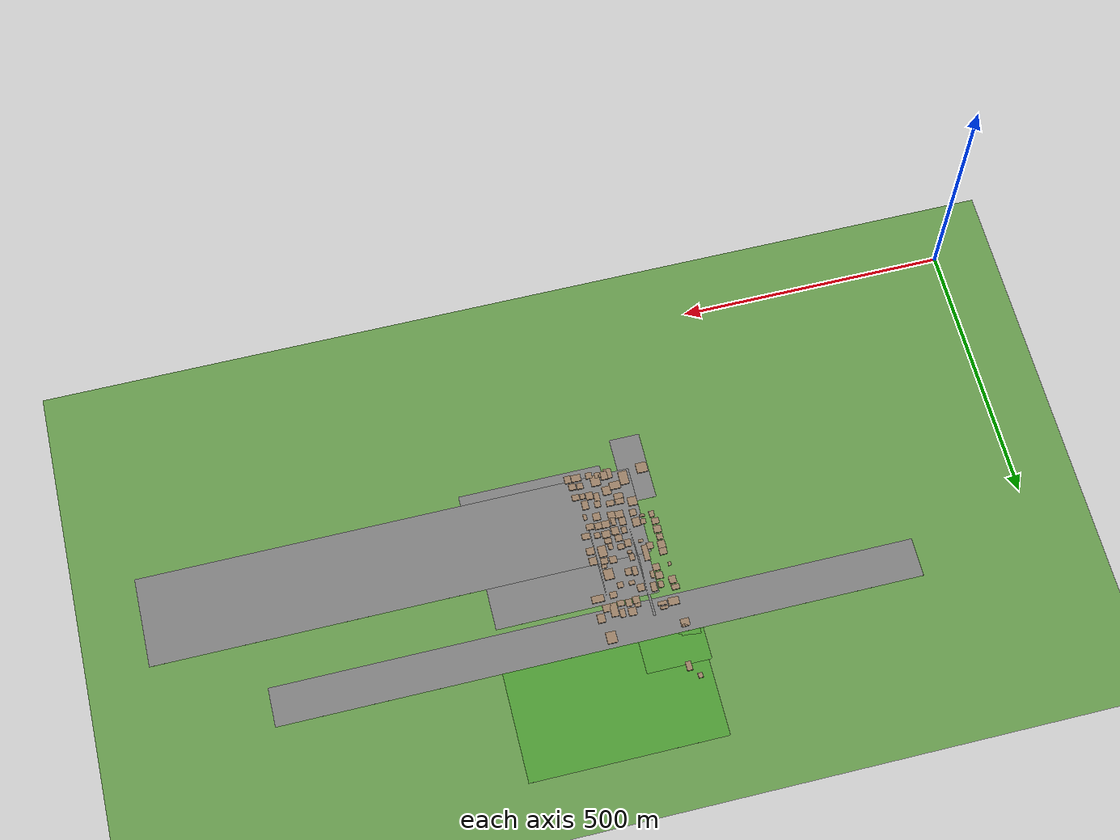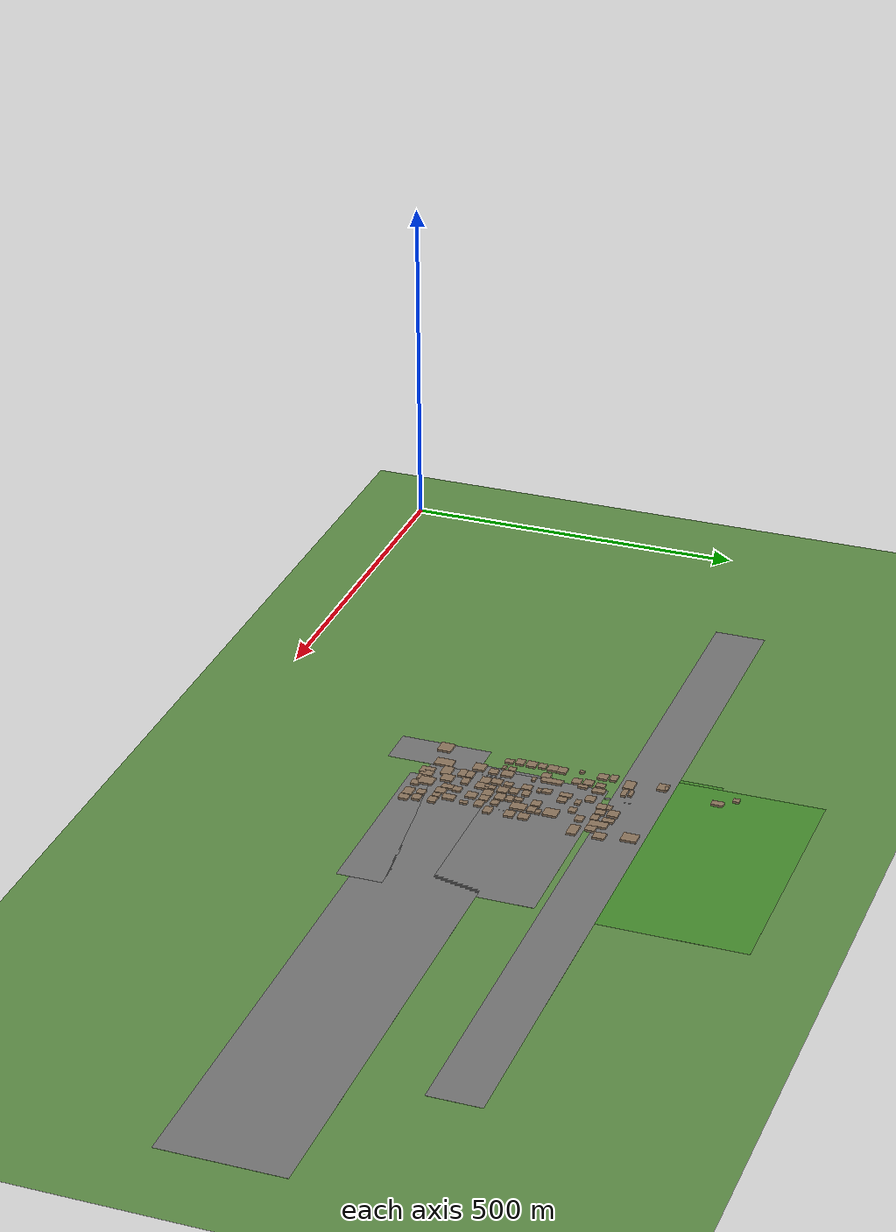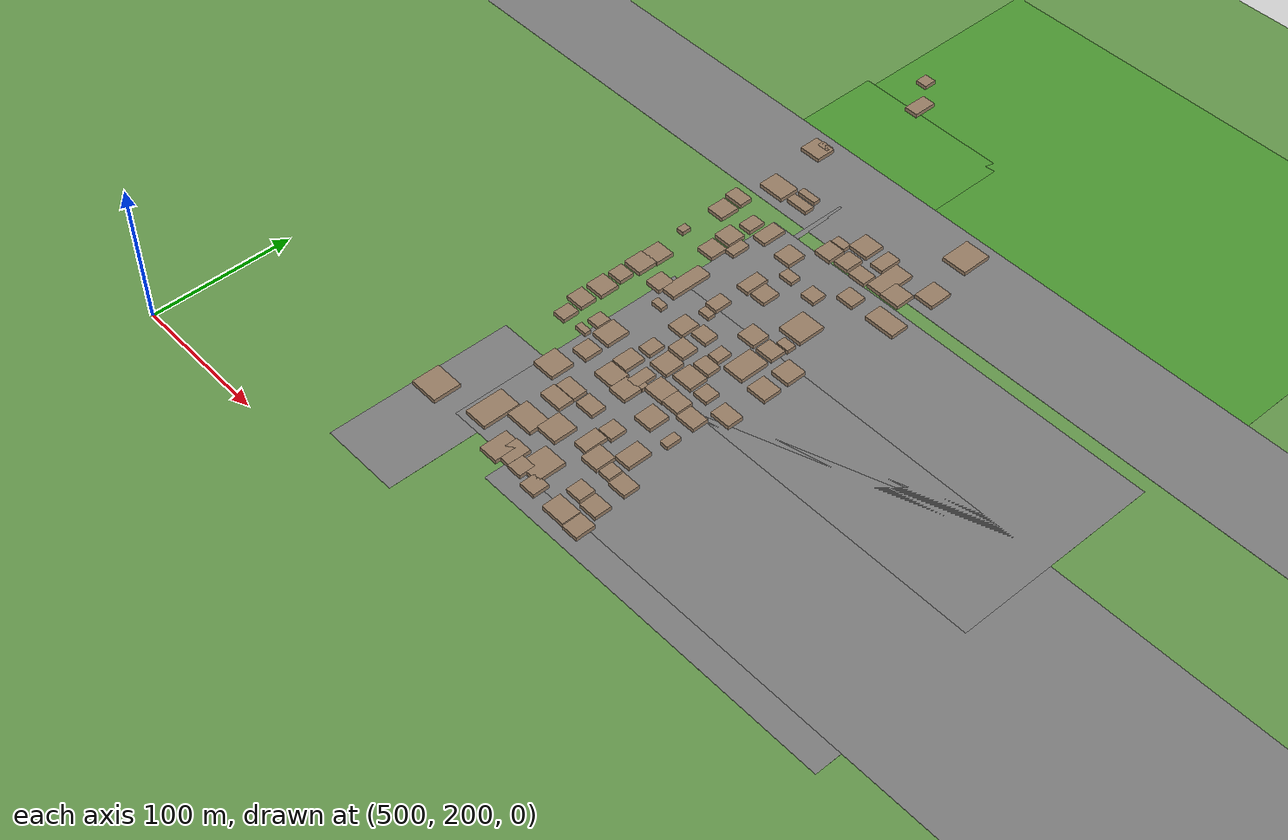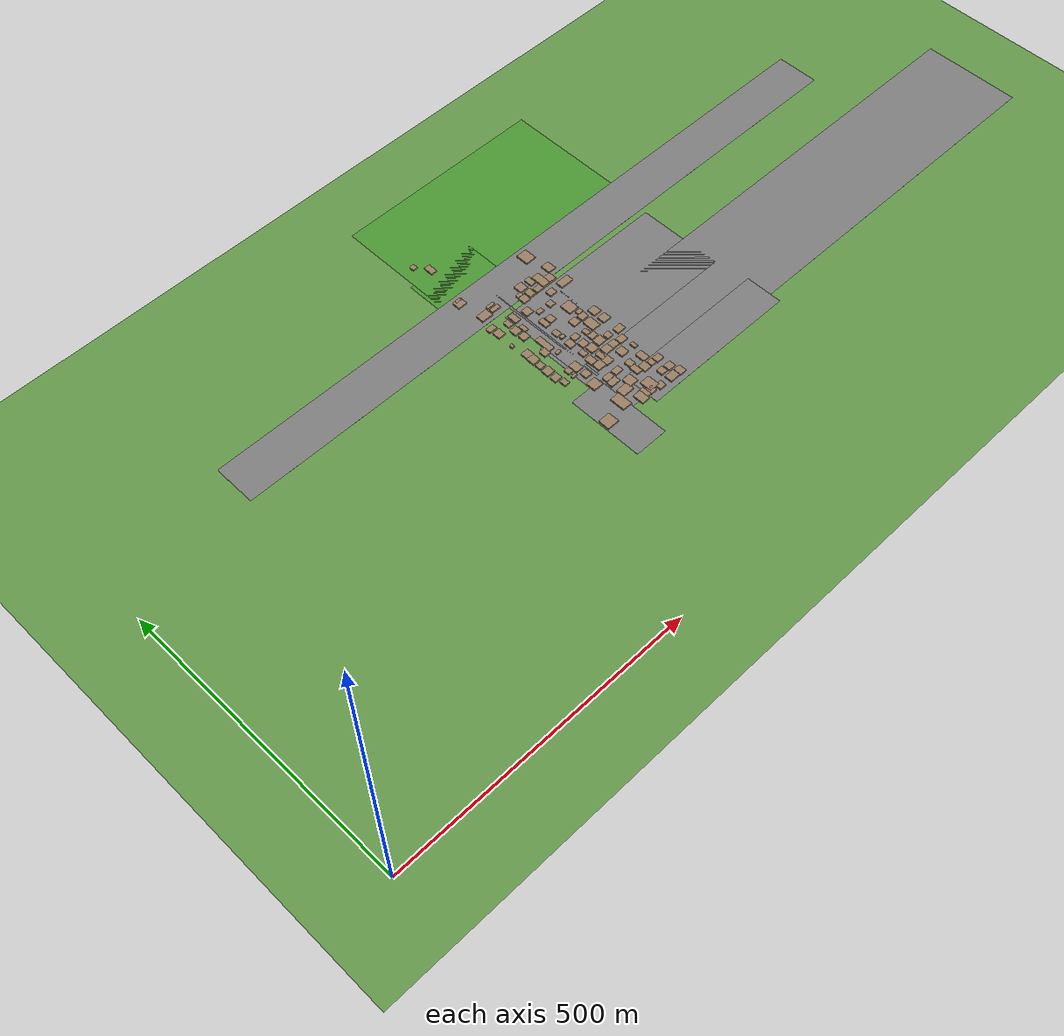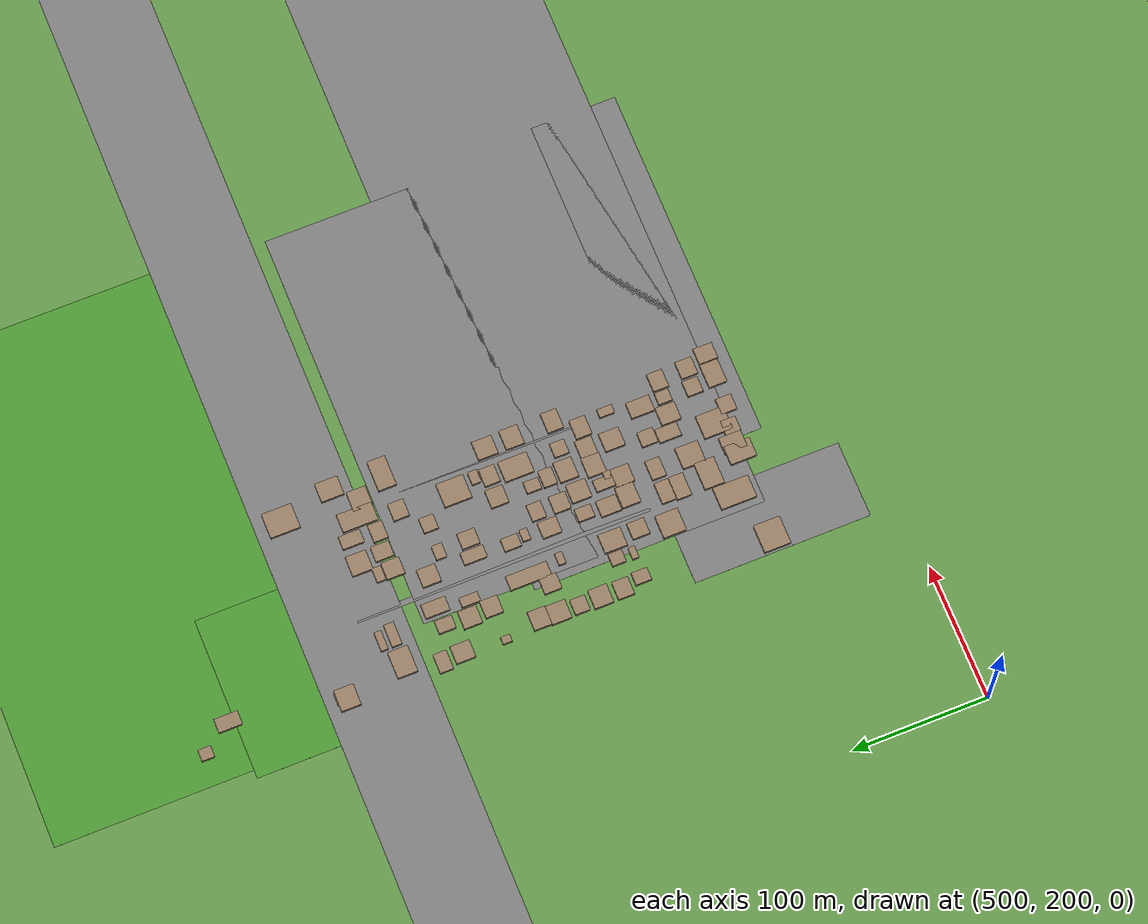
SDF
<sdf version="1.9">
 <world name="kimje_farmland">
  <model name="ground_plane">
   <static>true</static>
   <link name="link">
    <collision name="collision">
     <geometry><plane><normal>0 0 1</normal><size>2000 2000</size></plane></geometry>
    </collision>
    <visual name="visual">
     <geometry><plane><normal>0 0 1</normal><size>2000 2000</size></plane></geometry>
     <material><ambient>0.4 0.6 0.3 1</ambient><diffuse>0.4 0.6 0.3 1</diffuse></material>
    </visual>
   </link>
  </model>
  <model name="osm_15">
   <static>true</static>
   <pose>813.28 581.97 0.040 0 0 0</pose>
   <link name="link">
    <collision name="collision"><geometry><box><size>1186.26 73.63 0.080</size></box></geometry></collision>
    <visual name="visual">
     <geometry><box><size>1186.26 73.63 0.080</size></box></geometry>
     <material><ambient>0.5 0.5 0.5 1</ambient><diffuse>0.5 0.5 0.5 1</diffuse></material>
    </visual>
   </link>
  </model>
  <model name="osm_17">
   <static>true</static>
   <pose>1144.47 371.12 0.040 0 0 0</pose>
   <link name="link">
    <collision name="collision"><geometry><box><size>917.59 170.50 0.080</size></box></geometry></collision>
    <visual name="visual">
     <geometry><box><size>917.59 170.50 0.080</size></box></geometry>
     <material><ambient>0.5 0.5 0.5 1</ambient><diffuse>0.5 0.5 0.5 1</diffuse></material>
    </visual>
   </link>
  </model>
  <model name="osm_18">
   <static>true</static>
   <pose>841.81 462.14 0.040 0 0 0</pose>
   <link name="link">
    <collision name="collision"><geometry><box><size>300.90 147.02 0.080</size></box></geometry></collision>
    <visual name="visual">
     <geometry><box><size>300.90 147.02 0.080</size></box></geometry>
     <material><ambient>0.5 0.5 0.5 1</ambient><diffuse>0.5 0.5 0.5 1</diffuse></material>
    </visual>
   </link>
  </model>
  <model name="osm_19">
   <static>true</static>
   <pose>868.79 299.28 0.040 0 0 0</pose>
   <link name="link">
    <collision name="collision"><geometry><box><size>266.59 63.70 0.080</size></box></geometry></collision>
    <visual name="visual">
     <geometry><box><size>266.59 63.70 0.080</size></box></geometry>
     <material><ambient>0.5 0.5 0.5 1</ambient><diffuse>0.5 0.5 0.5 1</diffuse></material>
    </visual>
   </link>
  </model>
  <model name="osm_20">
   <static>true</static>
   <pose>677.61 287.76 0.040 0 0 0</pose>
   <link name="link">
    <collision name="collision"><geometry><box><size>56.59 130.14 0.080</size></box></geometry></collision>
    <visual name="visual">
     <geometry><box><size>56.59 130.14 0.080</size></box></geometry>
     <material><ambient>0.5 0.5 0.5 1</ambient><diffuse>0.5 0.5 0.5 1</diffuse></material>
    </visual>
   </link>
  </model>
  <model name="osm_25">
   <static>true</static>
   <pose>784.99 449.15 0.040 0 0 0</pose>
   <link name="link">
    <collision name="collision"><geometry><box><size>1.35 137.89 0.080</size></box></geometry></collision>
    <visual name="visual">
     <geometry><box><size>1.35 137.89 0.080</size></box></geometry>
     <material><ambient>0.5 0.5 0.5 1</ambient><diffuse>0.5 0.5 0.5 1</diffuse></material>
    </visual>
   </link>
  </model>
  <model name="osm_27">
   <static>true</static>
   <pose>710.72 469.01 0.040 0 0 0</pose>
   <link name="link">
    <collision name="collision"><geometry><box><size>4.04 215.42 0.080</size></box></geometry></collision>
    <visual name="visual">
     <geometry><box><size>4.04 215.42 0.080</size></box></geometry>
     <material><ambient>0.5 0.5 0.5 1</ambient><diffuse>0.5 0.5 0.5 1</diffuse></material>
    </visual>
   </link>
  </model>
  <model name="osm_1379">
   <static>true</static>
   <pose>660.75 705.38 1.500 0 0 0</pose>
   <link name="link">
    <collision name="collision"><geometry><box><size>8.44 9.18 3.000</size></box></geometry></collision>
    <visual name="visual">
     <geometry><box><size>8.44 9.18 3.000</size></box></geometry>
     <material><ambient>0.6 0.5 0.4 1</ambient><diffuse>0.6 0.5 0.4 1</diffuse></material>
    </visual>
   </link>
  </model>
  <model name="osm_1380">
   <static>true</static>
   <pose>675.96 683.78 1.500 0 0 0</pose>
   <link name="link">
    <collision name="collision"><geometry><box><size>10.18 17.19 3.000</size></box></geometry></collision>
    <visual name="visual">
     <geometry><box><size>10.18 17.19 3.000</size></box></geometry>
     <material><ambient>0.6 0.5 0.4 1</ambient><diffuse>0.6 0.5 0.4 1</diffuse></material>
    </visual>
   </link>
  </model>
  <model name="osm_1381">
   <static>true</static>
   <pose>795.84 599.43 1.500 0 0 0</pose>
   <link name="link">
    <collision name="collision"><geometry><box><size>18.50 21.80 3.000</size></box></geometry></collision>
    <visual name="visual">
     <geometry><box><size>18.50 21.80 3.000</size></box></geometry>
     <material><ambient>0.6 0.5 0.4 1</ambient><diffuse>0.6 0.5 0.4 1</diffuse></material>
    </visual>
   </link>
  </model>
  <model name="osm_1382">
   <static>true</static>
   <pose>804.86 560.35 1.500 0 0 0</pose>
   <link name="link">
    <collision name="collision"><geometry><box><size>14.12 16.63 3.000</size></box></geometry></collision>
    <visual name="visual">
     <geometry><box><size>14.12 16.63 3.000</size></box></geometry>
     <material><ambient>0.6 0.5 0.4 1</ambient><diffuse>0.6 0.5 0.4 1</diffuse></material>
    </visual>
   </link>
  </model>
  <model name="osm_1383">
   <static>true</static>
   <pose>790.59 543.69 1.500 0 0 0</pose>
   <link name="link">
    <collision name="collision"><geometry><box><size>14.74 14.07 3.000</size></box></geometry></collision>
    <visual name="visual">
     <geometry><box><size>14.74 14.07 3.000</size></box></geometry>
     <material><ambient>0.6 0.5 0.4 1</ambient><diffuse>0.6 0.5 0.4 1</diffuse></material>
    </visual>
   </link>
  </model>
  <model name="osm_1384">
   <static>true</static>
   <pose>778.69 549.90 1.500 0 0 0</pose>
   <link name="link">
    <collision name="collision"><geometry><box><size>13.51 25.74 3.000</size></box></geometry></collision>
    <visual name="visual">
     <geometry><box><size>13.51 25.74 3.000</size></box></geometry>
     <material><ambient>0.6 0.5 0.4 1</ambient><diffuse>0.6 0.5 0.4 1</diffuse></material>
    </visual>
   </link>
  </model>
  <model name="osm_1385">
   <static>true</static>
   <pose>765.34 559.48 1.500 0 0 0</pose>
   <link name="link">
    <collision name="collision"><geometry><box><size>9.75 15.68 3.000</size></box></geometry></collision>
    <visual name="visual">
     <geometry><box><size>9.75 15.68 3.000</size></box></geometry>
     <material><ambient>0.6 0.5 0.4 1</ambient><diffuse>0.6 0.5 0.4 1</diffuse></material>
    </visual>
   </link>
  </model>
  <model name="osm_1386">
   <static>true</static>
   <pose>763.95 540.58 1.500 0 0 0</pose>
   <link name="link">
    <collision name="collision"><geometry><box><size>13.25 10.45 3.000</size></box></geometry></collision>
    <visual name="visual">
     <geometry><box><size>13.25 10.45 3.000</size></box></geometry>
     <material><ambient>0.6 0.5 0.4 1</ambient><diffuse>0.6 0.5 0.4 1</diffuse></material>
    </visual>
   </link>
  </model>
  <model name="osm_1387">
   <static>true</static>
   <pose>747.52 560.74 1.500 0 0 0</pose>
   <link name="link">
    <collision name="collision"><geometry><box><size>14.83 14.94 3.000</size></box></geometry></collision>
    <visual name="visual">
     <geometry><box><size>14.83 14.94 3.000</size></box></geometry>
     <material><ambient>0.6 0.5 0.4 1</ambient><diffuse>0.6 0.5 0.4 1</diffuse></material>
    </visual>
   </link>
  </model>
  <model name="osm_1388">
   <static>true</static>
   <pose>749.54 543.03 1.500 0 0 0</pose>
   <link name="link">
    <collision name="collision"><geometry><box><size>11.27 13.43 3.000</size></box></geometry></collision>
    <visual name="visual">
     <geometry><box><size>11.27 13.43 3.000</size></box></geometry>
     <material><ambient>0.6 0.5 0.4 1</ambient><diffuse>0.6 0.5 0.4 1</diffuse></material>
    </visual>
   </link>
  </model>
  <model name="osm_1389">
   <static>true</static>
   <pose>735.22 551.09 1.500 0 0 0</pose>
   <link name="link">
    <collision name="collision"><geometry><box><size>10.69 6.50 3.000</size></box></geometry></collision>
    <visual name="visual">
     <geometry><box><size>10.69 6.50 3.000</size></box></geometry>
     <material><ambient>0.6 0.5 0.4 1</ambient><diffuse>0.6 0.5 0.4 1</diffuse></material>
    </visual>
   </link>
  </model>
  <model name="osm_1390">
   <static>true</static>
   <pose>735.56 540.67 1.500 0 0 0</pose>
   <link name="link">
    <collision name="collision"><geometry><box><size>12.71 13.19 3.000</size></box></geometry></collision>
    <visual name="visual">
     <geometry><box><size>12.71 13.19 3.000</size></box></geometry>
     <material><ambient>0.6 0.5 0.4 1</ambient><diffuse>0.6 0.5 0.4 1</diffuse></material>
    </visual>
   </link>
  </model>
  <model name="osm_1391">
   <static>true</static>
   <pose>721.42 519.85 1.500 0 0 0</pose>
   <link name="link">
    <collision name="collision"><geometry><box><size>13.35 13.48 3.000</size></box></geometry></collision>
    <visual name="visual">
     <geometry><box><size>13.35 13.48 3.000</size></box></geometry>
     <material><ambient>0.6 0.5 0.4 1</ambient><diffuse>0.6 0.5 0.4 1</diffuse></material>
    </visual>
   </link>
  </model>
  <model name="osm_1393">
   <static>true</static>
   <pose>663.35 608.19 1.500 0 0 0</pose>
   <link name="link">
    <collision name="collision"><geometry><box><size>8.79 4.99 3.000</size></box></geometry></collision>
    <visual name="visual">
     <geometry><box><size>8.79 4.99 3.000</size></box></geometry>
     <material><ambient>0.6 0.5 0.4 1</ambient><diffuse>0.6 0.5 0.4 1</diffuse></material>
    </visual>
   </link>
  </model>
  <model name="osm_1394">
   <static>true</static>
   <pose>671.10 558.92 1.500 0 0 0</pose>
   <link name="link">
    <collision name="collision"><geometry><box><size>19.78 14.61 3.000</size></box></geometry></collision>
    <visual name="visual">
     <geometry><box><size>19.78 14.61 3.000</size></box></geometry>
     <material><ambient>0.6 0.5 0.4 1</ambient><diffuse>0.6 0.5 0.4 1</diffuse></material>
    </visual>
   </link>
  </model>
  <model name="osm_1395">
   <static>true</static>
   <pose>690.43 567.06 1.500 0 0 0</pose>
   <link name="link">
    <collision name="collision"><geometry><box><size>14.19 5.18 3.000</size></box></geometry></collision>
    <visual name="visual">
     <geometry><box><size>14.19 5.18 3.000</size></box></geometry>
     <material><ambient>0.6 0.5 0.4 1</ambient><diffuse>0.6 0.5 0.4 1</diffuse></material>
    </visual>
   </link>
  </model>
  <model name="osm_1396">
   <static>true</static>
   <pose>691.63 558.06 1.500 0 0 0</pose>
   <link name="link">
    <collision name="collision"><geometry><box><size>16.75 7.22 3.000</size></box></geometry></collision>
    <visual name="visual">
     <geometry><box><size>16.75 7.22 3.000</size></box></geometry>
     <material><ambient>0.6 0.5 0.4 1</ambient><diffuse>0.6 0.5 0.4 1</diffuse></material>
    </visual>
   </link>
  </model>
  <model name="osm_1397">
   <static>true</static>
   <pose>698.67 524.10 1.500 0 0 0</pose>
   <link name="link">
    <collision name="collision"><geometry><box><size>10.38 17.64 3.000</size></box></geometry></collision>
    <visual name="visual">
     <geometry><box><size>10.38 17.64 3.000</size></box></geometry>
     <material><ambient>0.6 0.5 0.4 1</ambient><diffuse>0.6 0.5 0.4 1</diffuse></material>
    </visual>
   </link>
  </model>
  <model name="osm_1398">
   <static>true</static>
   <pose>684.90 522.32 1.500 0 0 0</pose>
   <link name="link">
    <collision name="collision"><geometry><box><size>9.58 12.46 3.000</size></box></geometry></collision>
    <visual name="visual">
     <geometry><box><size>9.58 12.46 3.000</size></box></geometry>
     <material><ambient>0.6 0.5 0.4 1</ambient><diffuse>0.6 0.5 0.4 1</diffuse></material>
    </visual>
   </link>
  </model>
  <model name="osm_1399">
   <static>true</static>
   <pose>660.90 533.39 1.500 0 0 0</pose>
   <link name="link">
    <collision name="collision"><geometry><box><size>14.20 9.74 3.000</size></box></geometry></collision>
    <visual name="visual">
     <geometry><box><size>14.20 9.74 3.000</size></box></geometry>
     <material><ambient>0.6 0.5 0.4 1</ambient><diffuse>0.6 0.5 0.4 1</diffuse></material>
    </visual>
   </link>
  </model>
  <model name="osm_1400">
   <static>true</static>
   <pose>662.46 518.39 1.500 0 0 0</pose>
   <link name="link">
    <collision name="collision"><geometry><box><size>13.11 14.10 3.000</size></box></geometry></collision>
    <visual name="visual">
     <geometry><box><size>13.11 14.10 3.000</size></box></geometry>
     <material><ambient>0.6 0.5 0.4 1</ambient><diffuse>0.6 0.5 0.4 1</diffuse></material>
    </visual>
   </link>
  </model>
  <model name="osm_1417">
   <static>true</static>
   <pose>659.58 487.67 1.500 0 0 0</pose>
   <link name="link">
    <collision name="collision"><geometry><box><size>5.36 6.70 3.000</size></box></geometry></collision>
    <visual name="visual">
     <geometry><box><size>5.36 6.70 3.000</size></box></geometry>
     <material><ambient>0.6 0.5 0.4 1</ambient><diffuse>0.6 0.5 0.4 1</diffuse></material>
    </visual>
   </link>
  </model>
  <model name="osm_1422">
   <static>true</static>
   <pose>664.97 460.95 1.500 0 0 0</pose>
   <link name="link">
    <collision name="collision"><geometry><box><size>13.96 13.31 3.000</size></box></geometry></collision>
    <visual name="visual">
     <geometry><box><size>13.96 13.31 3.000</size></box></geometry>
     <material><ambient>0.6 0.5 0.4 1</ambient><diffuse>0.6 0.5 0.4 1</diffuse></material>
    </visual>
   </link>
  </model>
  <model name="osm_1426">
   <static>true</static>
   <pose>664.30 447.53 1.500 0 0 0</pose>
   <link name="link">
    <collision name="collision"><geometry><box><size>13.94 14.49 3.000</size></box></geometry></collision>
    <visual name="visual">
     <geometry><box><size>13.94 14.49 3.000</size></box></geometry>
     <material><ambient>0.6 0.5 0.4 1</ambient><diffuse>0.6 0.5 0.4 1</diffuse></material>
    </visual>
   </link>
  </model>
  <model name="osm_1427">
   <static>true</static>
   <pose>685.22 445.04 1.500 0 0 0</pose>
   <link name="link">
    <collision name="collision"><geometry><box><size>11.81 12.65 3.000</size></box></geometry></collision>
    <visual name="visual">
     <geometry><box><size>11.81 12.65 3.000</size></box></geometry>
     <material><ambient>0.6 0.5 0.4 1</ambient><diffuse>0.6 0.5 0.4 1</diffuse></material>
    </visual>
   </link>
  </model>
  <model name="osm_1428">
   <static>true</static>
   <pose>683.43 504.77 1.500 0 0 0</pose>
   <link name="link">
    <collision name="collision"><geometry><box><size>13.31 13.44 3.000</size></box></geometry></collision>
    <visual name="visual">
     <geometry><box><size>13.31 13.44 3.000</size></box></geometry>
     <material><ambient>0.6 0.5 0.4 1</ambient><diffuse>0.6 0.5 0.4 1</diffuse></material>
    </visual>
   </link>
  </model>
  <model name="osm_1429">
   <static>true</static>
   <pose>695.15 500.35 1.500 0 0 0</pose>
   <link name="link">
    <collision name="collision"><geometry><box><size>7.10 13.47 3.000</size></box></geometry></collision>
    <visual name="visual">
     <geometry><box><size>7.10 13.47 3.000</size></box></geometry>
     <material><ambient>0.6 0.5 0.4 1</ambient><diffuse>0.6 0.5 0.4 1</diffuse></material>
    </visual>
   </link>
  </model>
  <model name="osm_1430">
   <static>true</static>
   <pose>684.94 488.49 1.500 0 0 0</pose>
   <link name="link">
    <collision name="collision"><geometry><box><size>12.87 12.85 3.000</size></box></geometry></collision>
    <visual name="visual">
     <geometry><box><size>12.87 12.85 3.000</size></box></geometry>
     <material><ambient>0.6 0.5 0.4 1</ambient><diffuse>0.6 0.5 0.4 1</diffuse></material>
    </visual>
   </link>
  </model>
  <model name="osm_1431">
   <static>true</static>
   <pose>695.87 456.81 1.500 0 0 0</pose>
   <link name="link">
    <collision name="collision"><geometry><box><size>10.67 30.10 3.000</size></box></geometry></collision>
    <visual name="visual">
     <geometry><box><size>10.67 30.10 3.000</size></box></geometry>
     <material><ambient>0.6 0.5 0.4 1</ambient><diffuse>0.6 0.5 0.4 1</diffuse></material>
    </visual>
   </link>
  </model>
  <model name="osm_1432">
   <static>true</static>
   <pose>699.32 431.95 1.500 0 0 0</pose>
   <link name="link">
    <collision name="collision"><geometry><box><size>8.76 5.28 3.000</size></box></geometry></collision>
    <visual name="visual">
     <geometry><box><size>8.76 5.28 3.000</size></box></geometry>
     <material><ambient>0.6 0.5 0.4 1</ambient><diffuse>0.6 0.5 0.4 1</diffuse></material>
    </visual>
   </link>
  </model>
  <model name="osm_1433">
   <static>true</static>
   <pose>663.53 432.11 1.500 0 0 0</pose>
   <link name="link">
    <collision name="collision"><geometry><box><size>11.38 10.89 3.000</size></box></geometry></collision>
    <visual name="visual">
     <geometry><box><size>11.38 10.89 3.000</size></box></geometry>
     <material><ambient>0.6 0.5 0.4 1</ambient><diffuse>0.6 0.5 0.4 1</diffuse></material>
    </visual>
   </link>
  </model>
  <model name="osm_1436">
   <static>true</static>
   <pose>734.91 507.03 1.500 0 0 0</pose>
   <link name="link">
    <collision name="collision"><geometry><box><size>10.73 7.67 3.000</size></box></geometry></collision>
    <visual name="visual">
     <geometry><box><size>10.73 7.67 3.000</size></box></geometry>
     <material><ambient>0.6 0.5 0.4 1</ambient><diffuse>0.6 0.5 0.4 1</diffuse></material>
    </visual>
   </link>
  </model>
  <model name="osm_1437">
   <static>true</static>
   <pose>723.81 486.03 1.500 0 0 0</pose>
   <link name="link">
    <collision name="collision"><geometry><box><size>9.35 16.81 3.000</size></box></geometry></collision>
    <visual name="visual">
     <geometry><box><size>9.35 16.81 3.000</size></box></geometry>
     <material><ambient>0.6 0.5 0.4 1</ambient><diffuse>0.6 0.5 0.4 1</diffuse></material>
    </visual>
   </link>
  </model>
  <model name="osm_1438">
   <static>true</static>
   <pose>735.99 485.01 1.500 0 0 0</pose>
   <link name="link">
    <collision name="collision"><geometry><box><size>11.66 12.87 3.000</size></box></geometry></collision>
    <visual name="visual">
     <geometry><box><size>11.66 12.87 3.000</size></box></geometry>
     <material><ambient>0.6 0.5 0.4 1</ambient><diffuse>0.6 0.5 0.4 1</diffuse></material>
    </visual>
   </link>
  </model>
  <model name="osm_1439">
   <static>true</static>
   <pose>722.45 459.01 1.500 0 0 0</pose>
   <link name="link">
    <collision name="collision"><geometry><box><size>9.44 12.35 3.000</size></box></geometry></collision>
    <visual name="visual">
     <geometry><box><size>9.44 12.35 3.000</size></box></geometry>
     <material><ambient>0.6 0.5 0.4 1</ambient><diffuse>0.6 0.5 0.4 1</diffuse></material>
    </visual>
   </link>
  </model>
  <model name="osm_1440">
   <static>true</static>
   <pose>724.17 448.09 1.500 0 0 0</pose>
   <link name="link">
    <collision name="collision"><geometry><box><size>8.64 5.64 3.000</size></box></geometry></collision>
    <visual name="visual">
     <geometry><box><size>8.64 5.64 3.000</size></box></geometry>
     <material><ambient>0.6 0.5 0.4 1</ambient><diffuse>0.6 0.5 0.4 1</diffuse></material>
    </visual>
   </link>
  </model>
  <model name="osm_1441">
   <static>true</static>
   <pose>722.72 430.48 1.500 0 0 0</pose>
   <link name="link">
    <collision name="collision"><geometry><box><size>12.09 13.83 3.000</size></box></geometry></collision>
    <visual name="visual">
     <geometry><box><size>12.09 13.83 3.000</size></box></geometry>
     <material><ambient>0.6 0.5 0.4 1</ambient><diffuse>0.6 0.5 0.4 1</diffuse></material>
    </visual>
   </link>
  </model>
  <model name="osm_1442">
   <static>true</static>
   <pose>736.92 434.42 1.500 0 0 0</pose>
   <link name="link">
    <collision name="collision"><geometry><box><size>12.45 10.32 3.000</size></box></geometry></collision>
    <visual name="visual">
     <geometry><box><size>12.45 10.32 3.000</size></box></geometry>
     <material><ambient>0.6 0.5 0.4 1</ambient><diffuse>0.6 0.5 0.4 1</diffuse></material>
    </visual>
   </link>
  </model>
  <model name="osm_1443">
   <static>true</static>
   <pose>756.19 506.29 1.500 0 0 0</pose>
   <link name="link">
    <collision name="collision"><geometry><box><size>11.01 10.53 3.000</size></box></geometry></collision>
    <visual name="visual">
     <geometry><box><size>11.01 10.53 3.000</size></box></geometry>
     <material><ambient>0.6 0.5 0.4 1</ambient><diffuse>0.6 0.5 0.4 1</diffuse></material>
    </visual>
   </link>
  </model>
  <model name="osm_1444">
   <static>true</static>
   <pose>773.10 521.81 1.500 0 0 0</pose>
   <link name="link">
    <collision name="collision"><geometry><box><size>12.92 11.45 3.000</size></box></geometry></collision>
    <visual name="visual">
     <geometry><box><size>12.92 11.45 3.000</size></box></geometry>
     <material><ambient>0.6 0.5 0.4 1</ambient><diffuse>0.6 0.5 0.4 1</diffuse></material>
    </visual>
   </link>
  </model>
  <model name="osm_1445">
   <static>true</static>
   <pose>801.98 522.84 1.500 0 0 0</pose>
   <link name="link">
    <collision name="collision"><geometry><box><size>22.65 13.18 3.000</size></box></geometry></collision>
    <visual name="visual">
     <geometry><box><size>22.65 13.18 3.000</size></box></geometry>
     <material><ambient>0.6 0.5 0.4 1</ambient><diffuse>0.6 0.5 0.4 1</diffuse></material>
    </visual>
   </link>
  </model>
  <model name="osm_1446">
   <static>true</static>
   <pose>771.64 481.45 1.500 0 0 0</pose>
   <link name="link">
    <collision name="collision"><geometry><box><size>17.80 20.02 3.000</size></box></geometry></collision>
    <visual name="visual">
     <geometry><box><size>17.80 20.02 3.000</size></box></geometry>
     <material><ambient>0.6 0.5 0.4 1</ambient><diffuse>0.6 0.5 0.4 1</diffuse></material>
    </visual>
   </link>
  </model>
  <model name="osm_1447">
   <static>true</static>
   <pose>792.76 450.16 1.500 0 0 0</pose>
   <link name="link">
    <collision name="collision"><geometry><box><size>13.99 14.58 3.000</size></box></geometry></collision>
    <visual name="visual">
     <geometry><box><size>13.99 14.58 3.000</size></box></geometry>
     <material><ambient>0.6 0.5 0.4 1</ambient><diffuse>0.6 0.5 0.4 1</diffuse></material>
    </visual>
   </link>
  </model>
  <model name="osm_1448">
   <static>true</static>
   <pose>792.99 430.17 1.500 0 0 0</pose>
   <link name="link">
    <collision name="collision"><geometry><box><size>14.76 13.56 3.000</size></box></geometry></collision>
    <visual name="visual">
     <geometry><box><size>14.76 13.56 3.000</size></box></geometry>
     <material><ambient>0.6 0.5 0.4 1</ambient><diffuse>0.6 0.5 0.4 1</diffuse></material>
    </visual>
   </link>
  </model>
  <model name="osm_1449">
   <static>true</static>
   <pose>775.60 464.76 1.500 0 0 0</pose>
   <link name="link">
    <collision name="collision"><geometry><box><size>9.64 6.77 3.000</size></box></geometry></collision>
    <visual name="visual">
     <geometry><box><size>9.64 6.77 3.000</size></box></geometry>
     <material><ambient>0.6 0.5 0.4 1</ambient><diffuse>0.6 0.5 0.4 1</diffuse></material>
    </visual>
   </link>
  </model>
  <model name="osm_1450">
   <static>true</static>
   <pose>772.88 454.69 1.500 0 0 0</pose>
   <link name="link">
    <collision name="collision"><geometry><box><size>13.12 11.33 3.000</size></box></geometry></collision>
    <visual name="visual">
     <geometry><box><size>13.12 11.33 3.000</size></box></geometry>
     <material><ambient>0.6 0.5 0.4 1</ambient><diffuse>0.6 0.5 0.4 1</diffuse></material>
    </visual>
   </link>
  </model>
  <model name="osm_1451">
   <static>true</static>
   <pose>756.91 455.64 1.500 0 0 0</pose>
   <link name="link">
    <collision name="collision"><geometry><box><size>13.56 12.85 3.000</size></box></geometry></collision>
    <visual name="visual">
     <geometry><box><size>13.56 12.85 3.000</size></box></geometry>
     <material><ambient>0.6 0.5 0.4 1</ambient><diffuse>0.6 0.5 0.4 1</diffuse></material>
    </visual>
   </link>
  </model>
  <model name="osm_1452">
   <static>true</static>
   <pose>771.85 435.53 1.500 0 0 0</pose>
   <link name="link">
    <collision name="collision"><geometry><box><size>15.39 21.30 3.000</size></box></geometry></collision>
    <visual name="visual">
     <geometry><box><size>15.39 21.30 3.000</size></box></geometry>
     <material><ambient>0.6 0.5 0.4 1</ambient><diffuse>0.6 0.5 0.4 1</diffuse></material>
    </visual>
   </link>
  </model>
  <model name="osm_1453">
   <static>true</static>
   <pose>755.11 429.98 1.500 0 0 0</pose>
   <link name="link">
    <collision name="collision"><geometry><box><size>8.56 10.81 3.000</size></box></geometry></collision>
    <visual name="visual">
     <geometry><box><size>8.56 10.81 3.000</size></box></geometry>
     <material><ambient>0.6 0.5 0.4 1</ambient><diffuse>0.6 0.5 0.4 1</diffuse></material>
    </visual>
   </link>
  </model>
  <model name="osm_1454">
   <static>true</static>
   <pose>756.81 418.02 1.500 0 0 0</pose>
   <link name="link">
    <collision name="collision"><geometry><box><size>12.88 9.87 3.000</size></box></geometry></collision>
    <visual name="visual">
     <geometry><box><size>12.88 9.87 3.000</size></box></geometry>
     <material><ambient>0.6 0.5 0.4 1</ambient><diffuse>0.6 0.5 0.4 1</diffuse></material>
    </visual>
   </link>
  </model>
  <model name="osm_1455">
   <static>true</static>
   <pose>757.09 404.43 1.500 0 0 0</pose>
   <link name="link">
    <collision name="collision"><geometry><box><size>15.25 13.45 3.000</size></box></geometry></collision>
    <visual name="visual">
     <geometry><box><size>15.25 13.45 3.000</size></box></geometry>
     <material><ambient>0.6 0.5 0.4 1</ambient><diffuse>0.6 0.5 0.4 1</diffuse></material>
    </visual>
   </link>
  </model>
  <model name="osm_1456">
   <static>true</static>
   <pose>773.19 402.71 1.500 0 0 0</pose>
   <link name="link">
    <collision name="collision"><geometry><box><size>10.71 10.60 3.000</size></box></geometry></collision>
    <visual name="visual">
     <geometry><box><size>10.71 10.60 3.000</size></box></geometry>
     <material><ambient>0.6 0.5 0.4 1</ambient><diffuse>0.6 0.5 0.4 1</diffuse></material>
    </visual>
   </link>
  </model>
  <model name="osm_1457">
   <static>true</static>
   <pose>793.71 399.88 1.500 0 0 0</pose>
   <link name="link">
    <collision name="collision"><geometry><box><size>15.01 11.63 3.000</size></box></geometry></collision>
    <visual name="visual">
     <geometry><box><size>15.01 11.63 3.000</size></box></geometry>
     <material><ambient>0.6 0.5 0.4 1</ambient><diffuse>0.6 0.5 0.4 1</diffuse></material>
    </visual>
   </link>
  </model>
  <model name="osm_1458">
   <static>true</static>
   <pose>782.01 383.40 1.500 0 0 0</pose>
   <link name="link">
    <collision name="collision"><geometry><box><size>14.34 11.57 3.000</size></box></geometry></collision>
    <visual name="visual">
     <geometry><box><size>14.34 11.57 3.000</size></box></geometry>
     <material><ambient>0.6 0.5 0.4 1</ambient><diffuse>0.6 0.5 0.4 1</diffuse></material>
    </visual>
   </link>
  </model>
  <model name="osm_1459">
   <static>true</static>
   <pose>767.05 385.35 1.500 0 0 0</pose>
   <link name="link">
    <collision name="collision"><geometry><box><size>13.15 12.28 3.000</size></box></geometry></collision>
    <visual name="visual">
     <geometry><box><size>13.15 12.28 3.000</size></box></geometry>
     <material><ambient>0.6 0.5 0.4 1</ambient><diffuse>0.6 0.5 0.4 1</diffuse></material>
    </visual>
   </link>
  </model>
  <model name="osm_1460">
   <static>true</static>
   <pose>765.69 366.68 1.500 0 0 0</pose>
   <link name="link">
    <collision name="collision"><geometry><box><size>13.84 14.57 3.000</size></box></geometry></collision>
    <visual name="visual">
     <geometry><box><size>13.84 14.57 3.000</size></box></geometry>
     <material><ambient>0.6 0.5 0.4 1</ambient><diffuse>0.6 0.5 0.4 1</diffuse></material>
    </visual>
   </link>
  </model>
  <model name="osm_1461">
   <static>true</static>
   <pose>786.41 362.85 1.500 0 0 0</pose>
   <link name="link">
    <collision name="collision"><geometry><box><size>6.27 10.92 3.000</size></box></geometry></collision>
    <visual name="visual">
     <geometry><box><size>6.27 10.92 3.000</size></box></geometry>
     <material><ambient>0.6 0.5 0.4 1</ambient><diffuse>0.6 0.5 0.4 1</diffuse></material>
    </visual>
   </link>
  </model>
  <model name="osm_1462">
   <static>true</static>
   <pose>753.14 385.41 1.500 0 0 0</pose>
   <link name="link">
    <collision name="collision"><geometry><box><size>15.00 13.33 3.000</size></box></geometry></collision>
    <visual name="visual">
     <geometry><box><size>15.00 13.33 3.000</size></box></geometry>
     <material><ambient>0.6 0.5 0.4 1</ambient><diffuse>0.6 0.5 0.4 1</diffuse></material>
    </visual>
   </link>
  </model>
  <model name="osm_1463">
   <static>true</static>
   <pose>736.70 417.21 1.500 0 0 0</pose>
   <link name="link">
    <collision name="collision"><geometry><box><size>12.88 12.30 3.000</size></box></geometry></collision>
    <visual name="visual">
     <geometry><box><size>12.88 12.30 3.000</size></box></geometry>
     <material><ambient>0.6 0.5 0.4 1</ambient><diffuse>0.6 0.5 0.4 1</diffuse></material>
    </visual>
   </link>
  </model>
  <model name="osm_1464">
   <static>true</static>
   <pose>739.63 401.99 1.500 0 0 0</pose>
   <link name="link">
    <collision name="collision"><geometry><box><size>13.99 14.35 3.000</size></box></geometry></collision>
    <visual name="visual">
     <geometry><box><size>13.99 14.35 3.000</size></box></geometry>
     <material><ambient>0.6 0.5 0.4 1</ambient><diffuse>0.6 0.5 0.4 1</diffuse></material>
    </visual>
   </link>
  </model>
  <model name="osm_1465">
   <static>true</static>
   <pose>738.37 383.13 1.500 0 0 0</pose>
   <link name="link">
    <collision name="collision"><geometry><box><size>8.66 15.08 3.000</size></box></geometry></collision>
    <visual name="visual">
     <geometry><box><size>8.66 15.08 3.000</size></box></geometry>
     <material><ambient>0.6 0.5 0.4 1</ambient><diffuse>0.6 0.5 0.4 1</diffuse></material>
    </visual>
   </link>
  </model>
  <model name="osm_1466">
   <static>true</static>
   <pose>723.36 404.29 1.500 0 0 0</pose>
   <link name="link">
    <collision name="collision"><geometry><box><size>9.51 11.80 3.000</size></box></geometry></collision>
    <visual name="visual">
     <geometry><box><size>9.51 11.80 3.000</size></box></geometry>
     <material><ambient>0.6 0.5 0.4 1</ambient><diffuse>0.6 0.5 0.4 1</diffuse></material>
    </visual>
   </link>
  </model>
  <model name="osm_1467">
   <static>true</static>
   <pose>722.04 387.07 1.500 0 0 0</pose>
   <link name="link">
    <collision name="collision"><geometry><box><size>12.04 14.82 3.000</size></box></geometry></collision>
    <visual name="visual">
     <geometry><box><size>12.04 14.82 3.000</size></box></geometry>
     <material><ambient>0.6 0.5 0.4 1</ambient><diffuse>0.6 0.5 0.4 1</diffuse></material>
    </visual>
   </link>
  </model>
  <model name="osm_1468">
   <static>true</static>
   <pose>724.29 371.86 1.500 0 0 0</pose>
   <link name="link">
    <collision name="collision"><geometry><box><size>15.33 13.47 3.000</size></box></geometry></collision>
    <visual name="visual">
     <geometry><box><size>15.33 13.47 3.000</size></box></geometry>
     <material><ambient>0.6 0.5 0.4 1</ambient><diffuse>0.6 0.5 0.4 1</diffuse></material>
    </visual>
   </link>
  </model>
  <model name="osm_1469">
   <static>true</static>
   <pose>738.80 370.01 1.500 0 0 0</pose>
   <link name="link">
    <collision name="collision"><geometry><box><size>13.52 13.38 3.000</size></box></geometry></collision>
    <visual name="visual">
     <geometry><box><size>13.52 13.38 3.000</size></box></geometry>
     <material><ambient>0.6 0.5 0.4 1</ambient><diffuse>0.6 0.5 0.4 1</diffuse></material>
    </visual>
   </link>
  </model>
  <model name="osm_1470">
   <static>true</static>
   <pose>743.10 379.29 1.500 0 0 0</pose>
   <link name="link">
    <collision name="collision"><geometry><box><size>5.56 5.38 3.000</size></box></geometry></collision>
    <visual name="visual">
     <geometry><box><size>5.56 5.38 3.000</size></box></geometry>
     <material><ambient>0.6 0.5 0.4 1</ambient><diffuse>0.6 0.5 0.4 1</diffuse></material>
    </visual>
   </link>
  </model>
  <model name="osm_1471">
   <static>true</static>
   <pose>698.06 393.94 1.500 0 0 0</pose>
   <link name="link">
    <collision name="collision"><geometry><box><size>14.04 16.53 3.000</size></box></geometry></collision>
    <visual name="visual">
     <geometry><box><size>14.04 16.53 3.000</size></box></geometry>
     <material><ambient>0.6 0.5 0.4 1</ambient><diffuse>0.6 0.5 0.4 1</diffuse></material>
    </visual>
   </link>
  </model>
  <model name="osm_1472">
   <static>true</static>
   <pose>699.23 374.43 1.500 0 0 0</pose>
   <link name="link">
    <collision name="collision"><geometry><box><size>12.09 12.60 3.000</size></box></geometry></collision>
    <visual name="visual">
     <geometry><box><size>12.09 12.60 3.000</size></box></geometry>
     <material><ambient>0.6 0.5 0.4 1</ambient><diffuse>0.6 0.5 0.4 1</diffuse></material>
    </visual>
   </link>
  </model>
  <model name="osm_1473">
   <static>true</static>
   <pose>685.24 395.88 1.500 0 0 0</pose>
   <link name="link">
    <collision name="collision"><geometry><box><size>9.27 10.10 3.000</size></box></geometry></collision>
    <visual name="visual">
     <geometry><box><size>9.27 10.10 3.000</size></box></geometry>
     <material><ambient>0.6 0.5 0.4 1</ambient><diffuse>0.6 0.5 0.4 1</diffuse></material>
    </visual>
   </link>
  </model>
  <model name="osm_1474">
   <static>true</static>
   <pose>684.43 384.05 1.500 0 0 0</pose>
   <link name="link">
    <collision name="collision"><geometry><box><size>8.83 4.70 3.000</size></box></geometry></collision>
    <visual name="visual">
     <geometry><box><size>8.83 4.70 3.000</size></box></geometry>
     <material><ambient>0.6 0.5 0.4 1</ambient><diffuse>0.6 0.5 0.4 1</diffuse></material>
    </visual>
   </link>
  </model>
  <model name="osm_1475">
   <static>true</static>
   <pose>663.93 416.70 1.500 0 0 0</pose>
   <link name="link">
    <collision name="collision"><geometry><box><size>14.08 13.83 3.000</size></box></geometry></collision>
    <visual name="visual">
     <geometry><box><size>14.08 13.83 3.000</size></box></geometry>
     <material><ambient>0.6 0.5 0.4 1</ambient><diffuse>0.6 0.5 0.4 1</diffuse></material>
    </visual>
   </link>
  </model>
  <model name="osm_1476">
   <static>true</static>
   <pose>663.67 400.30 1.500 0 0 0</pose>
   <link name="link">
    <collision name="collision"><geometry><box><size>13.37 11.86 3.000</size></box></geometry></collision>
    <visual name="visual">
     <geometry><box><size>13.37 11.86 3.000</size></box></geometry>
     <material><ambient>0.6 0.5 0.4 1</ambient><diffuse>0.6 0.5 0.4 1</diffuse></material>
    </visual>
   </link>
  </model>
  <model name="osm_1477">
   <static>true</static>
   <pose>666.79 385.46 1.500 0 0 0</pose>
   <link name="link">
    <collision name="collision"><geometry><box><size>9.32 11.71 3.000</size></box></geometry></collision>
    <visual name="visual">
     <geometry><box><size>9.32 11.71 3.000</size></box></geometry>
     <material><ambient>0.6 0.5 0.4 1</ambient><diffuse>0.6 0.5 0.4 1</diffuse></material>
    </visual>
   </link>
  </model>
  <model name="osm_1480">
   <static>true</static>
   <pose>694.56 352.39 1.500 0 0 0</pose>
   <link name="link">
    <collision name="collision"><geometry><box><size>16.96 16.75 3.000</size></box></geometry></collision>
    <visual name="visual">
     <geometry><box><size>16.96 16.75 3.000</size></box></geometry>
     <material><ambient>0.6 0.5 0.4 1</ambient><diffuse>0.6 0.5 0.4 1</diffuse></material>
    </visual>
   </link>
  </model>
  <model name="osm_1483">
   <static>true</static>
   <pose>661.15 291.05 1.500 0 0 0</pose>
   <link name="link">
    <collision name="collision"><geometry><box><size>20.72 19.48 3.000</size></box></geometry></collision>
    <visual name="visual">
     <geometry><box><size>20.72 19.48 3.000</size></box></geometry>
     <material><ambient>0.6 0.5 0.4 1</ambient><diffuse>0.6 0.5 0.4 1</diffuse></material>
    </visual>
   </link>
  </model>
  <model name="osm_1484">
   <static>true</static>
   <pose>717.23 347.04 1.500 0 0 0</pose>
   <link name="link">
    <collision name="collision"><geometry><box><size>15.76 10.38 3.000</size></box></geometry></collision>
    <visual name="visual">
     <geometry><box><size>15.76 10.38 3.000</size></box></geometry>
     <material><ambient>0.6 0.5 0.4 1</ambient><diffuse>0.6 0.5 0.4 1</diffuse></material>
    </visual>
   </link>
  </model>
  <model name="osm_1485">
   <static>true</static>
   <pose>716.80 336.20 1.500 0 0 0</pose>
   <link name="link">
    <collision name="collision"><geometry><box><size>17.11 10.74 3.000</size></box></geometry></collision>
    <visual name="visual">
     <geometry><box><size>17.11 10.74 3.000</size></box></geometry>
     <material><ambient>0.6 0.5 0.4 1</ambient><diffuse>0.6 0.5 0.4 1</diffuse></material>
    </visual>
   </link>
  </model>
  <model name="osm_1486">
   <static>true</static>
   <pose>734.92 346.77 1.500 0 0 0</pose>
   <link name="link">
    <collision name="collision"><geometry><box><size>14.42 10.52 3.000</size></box></geometry></collision>
    <visual name="visual">
     <geometry><box><size>14.42 10.52 3.000</size></box></geometry>
     <material><ambient>0.6 0.5 0.4 1</ambient><diffuse>0.6 0.5 0.4 1</diffuse></material>
    </visual>
   </link>
  </model>
  <model name="osm_1487">
   <static>true</static>
   <pose>735.24 320.87 1.500 0 0 0</pose>
   <link name="link">
    <collision name="collision"><geometry><box><size>15.90 16.73 3.000</size></box></geometry></collision>
    <visual name="visual">
     <geometry><box><size>15.90 16.73 3.000</size></box></geometry>
     <material><ambient>0.6 0.5 0.4 1</ambient><diffuse>0.6 0.5 0.4 1</diffuse></material>
    </visual>
   </link>
  </model>
  <model name="osm_1488">
   <static>true</static>
   <pose>718.01 313.93 1.500 0 0 0</pose>
   <link name="link">
    <collision name="collision"><geometry><box><size>20.16 14.69 3.000</size></box></geometry></collision>
    <visual name="visual">
     <geometry><box><size>20.16 14.69 3.000</size></box></geometry>
     <material><ambient>0.6 0.5 0.4 1</ambient><diffuse>0.6 0.5 0.4 1</diffuse></material>
    </visual>
   </link>
  </model>
  <model name="osm_1489">
   <static>true</static>
   <pose>698.68 303.10 1.500 0 0 0</pose>
   <link name="link">
    <collision name="collision"><geometry><box><size>16.70 26.15 3.000</size></box></geometry></collision>
    <visual name="visual">
     <geometry><box><size>16.70 26.15 3.000</size></box></geometry>
     <material><ambient>0.6 0.5 0.4 1</ambient><diffuse>0.6 0.5 0.4 1</diffuse></material>
    </visual>
   </link>
  </model>
  <model name="osm_1490">
   <static>true</static>
   <pose>793.74 321.00 1.500 0 0 0</pose>
   <link name="link">
    <collision name="collision"><geometry><box><size>13.54 11.40 3.000</size></box></geometry></collision>
    <visual name="visual">
     <geometry><box><size>13.54 11.40 3.000</size></box></geometry>
     <material><ambient>0.6 0.5 0.4 1</ambient><diffuse>0.6 0.5 0.4 1</diffuse></material>
    </visual>
   </link>
  </model>
  <model name="osm_1491">
   <static>true</static>
   <pose>794.85 299.00 1.500 0 0 0</pose>
   <link name="link">
    <collision name="collision"><geometry><box><size>13.07 12.11 3.000</size></box></geometry></collision>
    <visual name="visual">
     <geometry><box><size>13.07 12.11 3.000</size></box></geometry>
     <material><ambient>0.6 0.5 0.4 1</ambient><diffuse>0.6 0.5 0.4 1</diffuse></material>
    </visual>
   </link>
  </model>
  <model name="osm_1492">
   <static>true</static>
   <pose>780.43 339.57 1.500 0 0 0</pose>
   <link name="link">
    <collision name="collision"><geometry><box><size>11.99 17.14 3.000</size></box></geometry></collision>
    <visual name="visual">
     <geometry><box><size>11.99 17.14 3.000</size></box></geometry>
     <material><ambient>0.6 0.5 0.4 1</ambient><diffuse>0.6 0.5 0.4 1</diffuse></material>
    </visual>
   </link>
  </model>
  <model name="osm_1493">
   <static>true</static>
   <pose>781.28 321.88 1.500 0 0 0</pose>
   <link name="link">
    <collision name="collision"><geometry><box><size>9.02 10.11 3.000</size></box></geometry></collision>
    <visual name="visual">
     <geometry><box><size>9.02 10.11 3.000</size></box></geometry>
     <material><ambient>0.6 0.5 0.4 1</ambient><diffuse>0.6 0.5 0.4 1</diffuse></material>
    </visual>
   </link>
  </model>
  <model name="osm_1494">
   <static>true</static>
   <pose>757.98 343.38 1.500 0 0 0</pose>
   <link name="link">
    <collision name="collision"><geometry><box><size>11.14 11.62 3.000</size></box></geometry></collision>
    <visual name="visual">
     <geometry><box><size>11.14 11.62 3.000</size></box></geometry>
     <material><ambient>0.6 0.5 0.4 1</ambient><diffuse>0.6 0.5 0.4 1</diffuse></material>
    </visual>
   </link>
  </model>
  <model name="osm_1495">
   <static>true</static>
   <pose>768.67 323.52 1.500 0 0 0</pose>
   <link name="link">
    <collision name="collision"><geometry><box><size>13.45 14.29 3.000</size></box></geometry></collision>
    <visual name="visual">
     <geometry><box><size>13.45 14.29 3.000</size></box></geometry>
     <material><ambient>0.6 0.5 0.4 1</ambient><diffuse>0.6 0.5 0.4 1</diffuse></material>
    </visual>
   </link>
  </model>
  <model name="osm_1496">
   <static>true</static>
   <pose>755.89 328.81 1.500 0 0 0</pose>
   <link name="link">
    <collision name="collision"><geometry><box><size>10.29 16.19 3.000</size></box></geometry></collision>
    <visual name="visual">
     <geometry><box><size>10.29 16.19 3.000</size></box></geometry>
     <material><ambient>0.6 0.5 0.4 1</ambient><diffuse>0.6 0.5 0.4 1</diffuse></material>
    </visual>
   </link>
  </model>
  <model name="osm_1497">
   <static>true</static>
   <pose>780.59 300.28 1.500 0 0 0</pose>
   <link name="link">
    <collision name="collision"><geometry><box><size>11.62 11.39 3.000</size></box></geometry></collision>
    <visual name="visual">
     <geometry><box><size>11.62 11.39 3.000</size></box></geometry>
     <material><ambient>0.6 0.5 0.4 1</ambient><diffuse>0.6 0.5 0.4 1</diffuse></material>
    </visual>
   </link>
  </model>
  <model name="osm_1498">
   <static>true</static>
   <pose>784.18 283.23 1.500 0 0 0</pose>
   <link name="link">
    <collision name="collision"><geometry><box><size>17.68 13.31 3.000</size></box></geometry></collision>
    <visual name="visual">
     <geometry><box><size>17.68 13.31 3.000</size></box></geometry>
     <material><ambient>0.6 0.5 0.4 1</ambient><diffuse>0.6 0.5 0.4 1</diffuse></material>
    </visual>
   </link>
  </model>
  <model name="osm_1499">
   <static>true</static>
   <pose>799.72 282.66 1.500 0 0 0</pose>
   <link name="link">
    <collision name="collision"><geometry><box><size>12.03 13.91 3.000</size></box></geometry></collision>
    <visual name="visual">
     <geometry><box><size>12.03 13.91 3.000</size></box></geometry>
     <material><ambient>0.6 0.5 0.4 1</ambient><diffuse>0.6 0.5 0.4 1</diffuse></material>
    </visual>
   </link>
  </model>
  <model name="osm_1500">
   <static>true</static>
   <pose>750.80 296.63 1.500 0 0 0</pose>
   <link name="link">
    <collision name="collision"><geometry><box><size>17.47 20.77 3.000</size></box></geometry></collision>
    <visual name="visual">
     <geometry><box><size>17.47 20.77 3.000</size></box></geometry>
     <material><ambient>0.6 0.5 0.4 1</ambient><diffuse>0.6 0.5 0.4 1</diffuse></material>
    </visual>
   </link>
  </model>
  <model name="osm_1501">
   <static>true</static>
   <pose>744.39 287.00 1.500 0 0 0</pose>
   <link name="link">
    <collision name="collision"><geometry><box><size>10.91 11.13 3.000</size></box></geometry></collision>
    <visual name="visual">
     <geometry><box><size>10.91 11.13 3.000</size></box></geometry>
     <material><ambient>0.6 0.5 0.4 1</ambient><diffuse>0.6 0.5 0.4 1</diffuse></material>
    </visual>
   </link>
  </model>
  <model name="osm_1502">
   <static>true</static>
   <pose>760.05 283.71 1.500 0 0 0</pose>
   <link name="link">
    <collision name="collision"><geometry><box><size>11.76 11.49 3.000</size></box></geometry></collision>
    <visual name="visual">
     <geometry><box><size>11.76 11.49 3.000</size></box></geometry>
     <material><ambient>0.6 0.5 0.4 1</ambient><diffuse>0.6 0.5 0.4 1</diffuse></material>
    </visual>
   </link>
  </model>
  <model name="osm_1505">
   <static>true</static>
   <pose>732.75 290.20 1.500 0 0 0</pose>
   <link name="link">
    <collision name="collision"><geometry><box><size>12.31 16.41 3.000</size></box></geometry></collision>
    <visual name="visual">
     <geometry><box><size>12.31 16.41 3.000</size></box></geometry>
     <material><ambient>0.6 0.5 0.4 1</ambient><diffuse>0.6 0.5 0.4 1</diffuse></material>
    </visual>
   </link>
  </model>
  <model name="osm_1506">
   <static>true</static>
   <pose>724.84 287.99 1.500 0 0 0</pose>
   <link name="link">
    <collision name="collision"><geometry><box><size>13.95 19.25 3.000</size></box></geometry></collision>
    <visual name="visual">
     <geometry><box><size>13.95 19.25 3.000</size></box></geometry>
     <material><ambient>0.6 0.5 0.4 1</ambient><diffuse>0.6 0.5 0.4 1</diffuse></material>
    </visual>
   </link>
  </model>
  <model name="osm_1518">
   <static>true</static>
   <pose>661.61 602.91 1.500 0 0 0</pose>
   <link name="link">
    <collision name="collision"><geometry><box><size>15.79 14.29 3.000</size></box></geometry></collision>
    <visual name="visual">
     <geometry><box><size>15.79 14.29 3.000</size></box></geometry>
     <material><ambient>0.6 0.5 0.4 1</ambient><diffuse>0.6 0.5 0.4 1</diffuse></material>
    </visual>
   </link>
  </model>
  <model name="osm_1523">
   <static>true</static>
   <pose>692.06 627.46 0.025 0 0 0</pose>
   <link name="link">
    <collision name="collision"><geometry><box><size>119.39 104.14 0.050</size></box></geometry></collision>
    <visual name="visual">
     <geometry><box><size>119.39 104.14 0.050</size></box></geometry>
     <material><ambient>0.3 0.6 0.2 1</ambient><diffuse>0.3 0.6 0.2 1</diffuse></material>
    </visual>
   </link>
  </model>
  <model name="osm_1524">
   <static>true</static>
   <pose>819.11 714.23 0.025 0 0 0</pose>
   <link name="link">
    <collision name="collision"><geometry><box><size>361.31 217.45 0.050</size></box></geometry></collision>
    <visual name="visual">
     <geometry><box><size>361.31 217.45 0.050</size></box></geometry>
     <material><ambient>0.3 0.6 0.2 1</ambient><diffuse>0.3 0.6 0.2 1</diffuse></material>
    </visual>
   </link>
  </model>
 </world>
</sdf>
